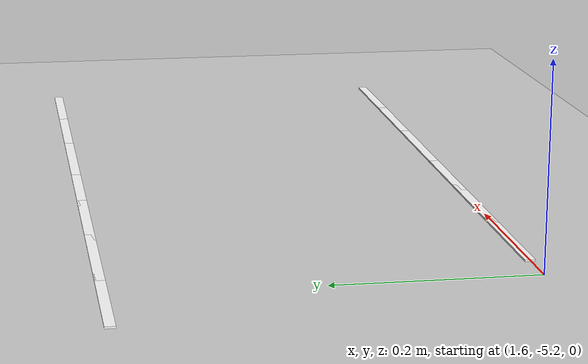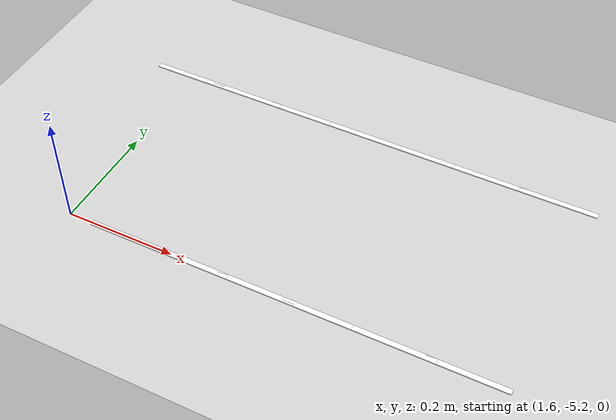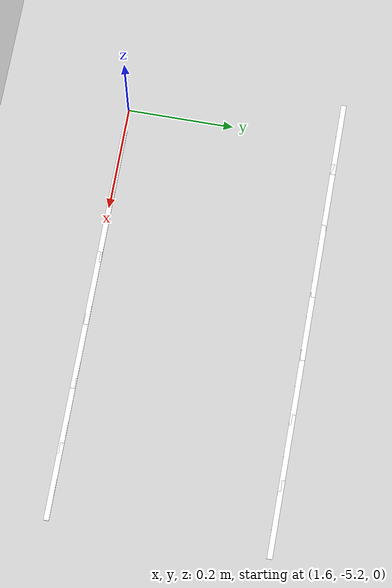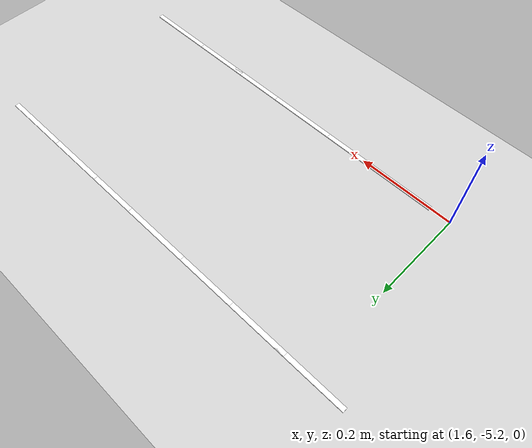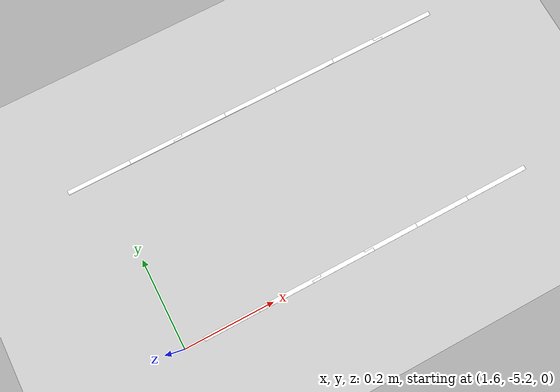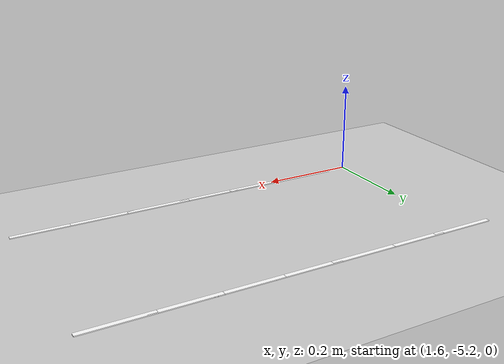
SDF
<sdf version="1.7">
 <world name="default">
  <model name="ground_plane">
   <static>1</static>
   <link name="link">
    <collision name="collision">
     <geometry><plane><normal>0 0 1</normal><size>100 100</size></plane></geometry>
     <surface>
      <contact><collide_bitmask>65535</collide_bitmask></contact>
      <friction><ode><mu>100</mu><mu2>50</mu2></ode></friction>
     </surface>
    </collision>
    <visual name="visual">
     <cast_shadows>0</cast_shadows>
     <geometry><plane><normal>0 0 1</normal><size>100 100</size></plane></geometry>
     <material>
      <script><uri>file://media/materials/scripts/gazebo.material</uri><name>Gazebo/Grey</name></script>
     </material>
    </visual>
   </link>
  </model>
  <model name="lane_line_left_37">
   <static>1</static>
   <link name="link">
    <pose>0 0 -0.004 0 -0 0</pose>
    <visual name="visual">
     <geometry><box><size>0.1424 0.01 0.01</size></box></geometry>
     <material><ambient>1 1 1 1</ambient><diffuse>1 1 1 1</diffuse></material>
    </visual>
    <collision name="collision"><geometry><box><size>0.1424 0.01 0.01</size></box></geometry></collision>
   </link>
   <pose>1.59184 -4.8 0 0 -0 0</pose>
  </model>
  <model name="lane_line_left_38">
   <static>1</static>
   <link name="link">
    <pose>0 0 -0.004 0 -0 0</pose>
    <visual name="visual">
     <geometry><box><size>0.1424 0.01 0.01</size></box></geometry>
     <material><ambient>1 1 1 1</ambient><diffuse>1 1 1 1</diffuse></material>
    </visual>
    <collision name="collision"><geometry><box><size>0.1424 0.01 0.01</size></box></geometry></collision>
   </link>
   <pose>1.71429 -4.8 0 0 -0 0</pose>
  </model>
  <model name="lane_line_right_38">
   <static>1</static>
   <link name="link">
    <pose>0 0 -0.004 0 -0 0</pose>
    <visual name="visual">
     <geometry><box><size>0.1424 0.01 0.01</size></box></geometry>
     <material><ambient>1 1 1 1</ambient><diffuse>1 1 1 1</diffuse></material>
    </visual>
    <collision name="collision"><geometry><box><size>0.1424 0.01 0.01</size></box></geometry></collision>
   </link>
   <pose>1.71429 -5.2 0 0 -0 0</pose>
  </model>
  <model name="lane_line_left_39">
   <static>1</static>
   <link name="link">
    <pose>0 0 -0.004 0 -0 0</pose>
    <visual name="visual">
     <geometry><box><size>0.1424 0.01 0.01</size></box></geometry>
     <material><ambient>1 1 1 1</ambient><diffuse>1 1 1 1</diffuse></material>
    </visual>
    <collision name="collision"><geometry><box><size>0.1424 0.01 0.01</size></box></geometry></collision>
   </link>
   <pose>1.83673 -4.8 0 0 -0 0</pose>
  </model>
  <model name="lane_line_right_39">
   <static>1</static>
   <link name="link">
    <pose>0 0 -0.004 0 -0 0</pose>
    <visual name="visual">
     <geometry><box><size>0.1424 0.01 0.01</size></box></geometry>
     <material><ambient>1 1 1 1</ambient><diffuse>1 1 1 1</diffuse></material>
    </visual>
    <collision name="collision"><geometry><box><size>0.1424 0.01 0.01</size></box></geometry></collision>
   </link>
   <pose>1.83673 -5.2 0 0 -0 0</pose>
  </model>
  <model name="lane_line_left_40">
   <static>1</static>
   <link name="link">
    <pose>0 0 -0.004 0 -0 0</pose>
    <visual name="visual">
     <geometry><box><size>0.1424 0.01 0.01</size></box></geometry>
     <material><ambient>1 1 1 1</ambient><diffuse>1 1 1 1</diffuse></material>
    </visual>
    <collision name="collision"><geometry><box><size>0.1424 0.01 0.01</size></box></geometry></collision>
   </link>
   <pose>1.95918 -4.8 0 0 -0 0</pose>
  </model>
  <model name="lane_line_right_40">
   <static>1</static>
   <link name="link">
    <pose>0 0 -0.004 0 -0 0</pose>
    <visual name="visual">
     <geometry><box><size>0.1424 0.01 0.01</size></box></geometry>
     <material><ambient>1 1 1 1</ambient><diffuse>1 1 1 1</diffuse></material>
    </visual>
    <collision name="collision"><geometry><box><size>0.1424 0.01 0.01</size></box></geometry></collision>
   </link>
   <pose>1.95918 -5.2 0 0 -0 0</pose>
  </model>
  <model name="lane_line_left_41">
   <static>1</static>
   <link name="link">
    <pose>0 0 -0.004 0 -0 0</pose>
    <visual name="visual">
     <geometry><box><size>0.1424 0.01 0.01</size></box></geometry>
     <material><ambient>1 1 1 1</ambient><diffuse>1 1 1 1</diffuse></material>
    </visual>
    <collision name="collision"><geometry><box><size>0.1424 0.01 0.01</size></box></geometry></collision>
   </link>
   <pose>2.08163 -4.8 0 0 -0 0</pose>
  </model>
  <model name="lane_line_right_41">
   <static>1</static>
   <link name="link">
    <pose>0 0 -0.004 0 -0 0</pose>
    <visual name="visual">
     <geometry><box><size>0.1424 0.01 0.01</size></box></geometry>
     <material><ambient>1 1 1 1</ambient><diffuse>1 1 1 1</diffuse></material>
    </visual>
    <collision name="collision"><geometry><box><size>0.1424 0.01 0.01</size></box></geometry></collision>
   </link>
   <pose>2.08163 -5.2 0 0 -0 0</pose>
  </model>
  <model name="lane_line_left_42">
   <static>1</static>
   <link name="link">
    <pose>0 0 -0.004 0 -0 0</pose>
    <visual name="visual">
     <geometry><box><size>0.1424 0.01 0.01</size></box></geometry>
     <material><ambient>1 1 1 1</ambient><diffuse>1 1 1 1</diffuse></material>
    </visual>
    <collision name="collision"><geometry><box><size>0.1424 0.01 0.01</size></box></geometry></collision>
   </link>
   <pose>2.20408 -4.8 0 0 -0 0</pose>
  </model>
  <model name="lane_line_right_42">
   <static>1</static>
   <link name="link">
    <pose>0 0 -0.004 0 -0 0</pose>
    <visual name="visual">
     <geometry><box><size>0.1424 0.01 0.01</size></box></geometry>
     <material><ambient>1 1 1 1</ambient><diffuse>1 1 1 1</diffuse></material>
    </visual>
    <collision name="collision"><geometry><box><size>0.1424 0.01 0.01</size></box></geometry></collision>
   </link>
   <pose>2.20408 -5.2 0 0 -0 0</pose>
  </model>
  <model name="lane_line_left_43">
   <static>1</static>
   <link name="link">
    <pose>0 0 -0.004 0 -0 0</pose>
    <visual name="visual">
     <geometry><box><size>0.1424 0.01 0.01</size></box></geometry>
     <material><ambient>1 1 1 1</ambient><diffuse>1 1 1 1</diffuse></material>
    </visual>
    <collision name="collision"><geometry><box><size>0.1424 0.01 0.01</size></box></geometry></collision>
   </link>
   <pose>2.32653 -4.8 0 0 -0 0</pose>
  </model>
  <model name="lane_line_right_43">
   <static>1</static>
   <link name="link">
    <pose>0 0 -0.004 0 -0 0</pose>
    <visual name="visual">
     <geometry><box><size>0.1424 0.01 0.01</size></box></geometry>
     <material><ambient>1 1 1 1</ambient><diffuse>1 1 1 1</diffuse></material>
    </visual>
    <collision name="collision"><geometry><box><size>0.1424 0.01 0.01</size></box></geometry></collision>
   </link>
   <pose>2.32653 -5.2 0 0 -0 0</pose>
  </model>
 </world>
</sdf>
